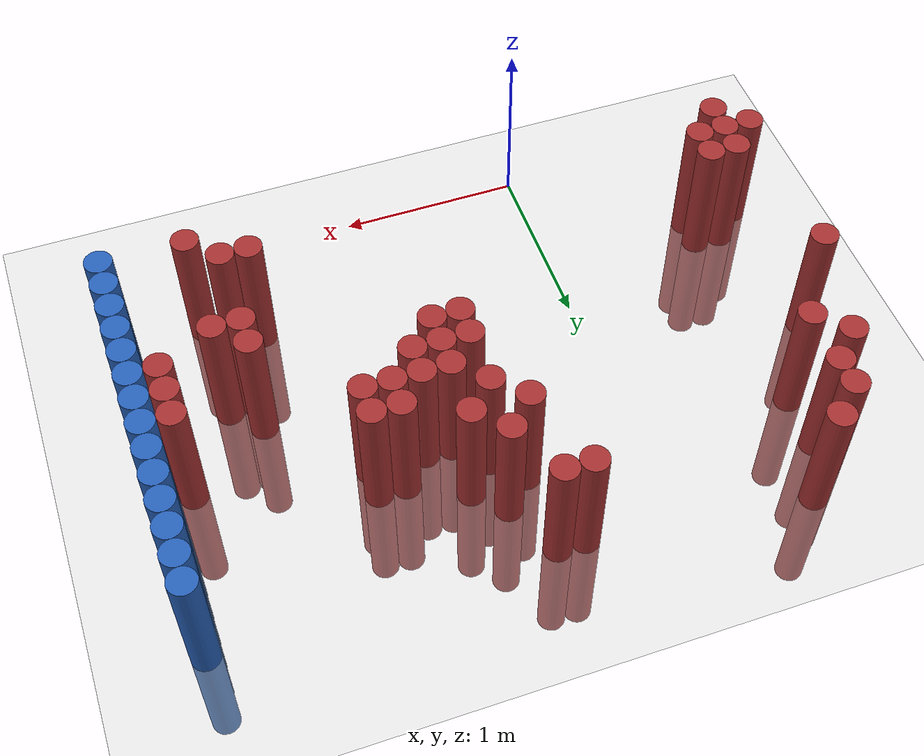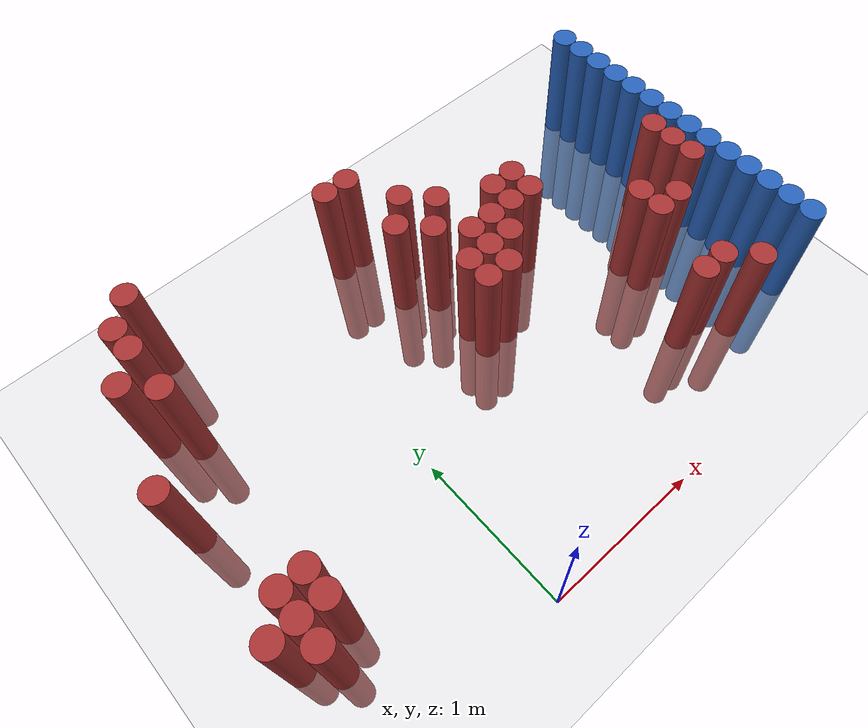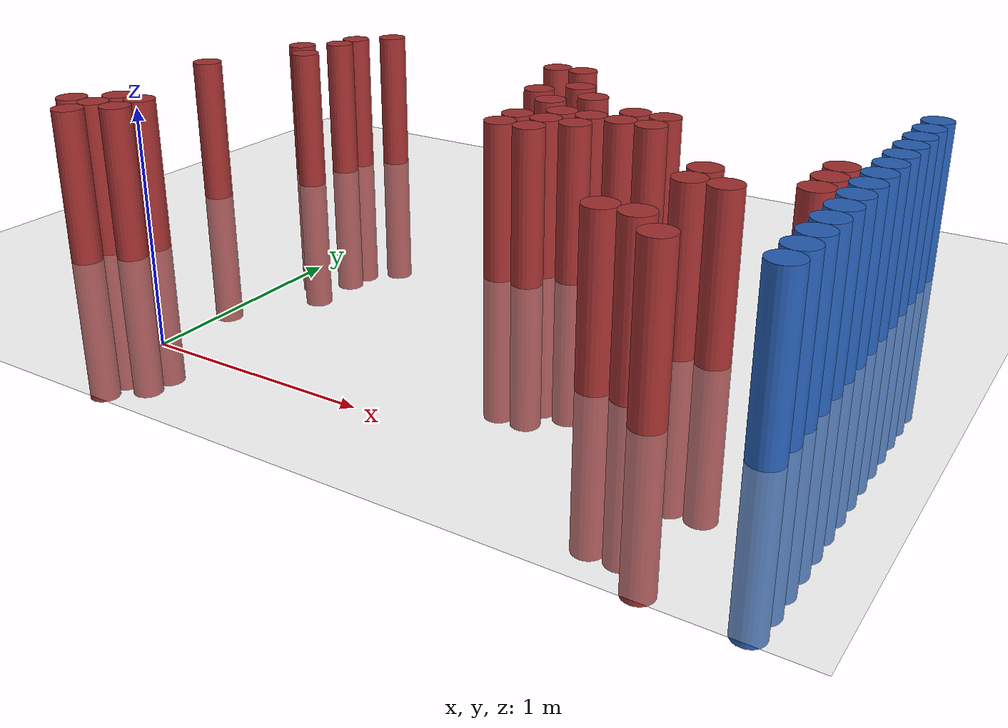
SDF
<sdf version="1.6">
 <world name="default">
  <model name="ground_plane">
   <static>1</static>
   <link name="link">
    <collision name="collision">
     <geometry><plane><normal>0 0 1</normal><size>100 100</size></plane></geometry>
     <surface><friction><ode><mu>100</mu><mu2>50</mu2></ode></friction></surface>
    </collision>
    <visual name="visual">
     <cast_shadows>0</cast_shadows>
     <geometry><plane><normal>0 0 1</normal><size>100 100</size></plane></geometry>
     <material>
      <script><uri>file://media/materials/scripts/gazebo.material</uri><name>Gazebo/Grey</name></script>
     </material>
    </visual>
   </link>
  </model>
  <model name="unit_cylinder_152">
   <static>1</static>
   <pose>-1.175000 0.625000 0.000000 0.000000 0.000000 0.000000</pose>
   <link name="link">
    <inertial>
     <mass>1</mass>
     <inertia><ixx>0.145833</ixx><ixy>0</ixy><ixz>0</ixz><iyy>0.145833</iyy><iyz>0</iyz><izz>0.125</izz></inertia>
    </inertial>
    <collision name="collision">
     <geometry><cylinder><radius>0.075000</radius><length>1.5</length></cylinder></geometry>
    </collision>
    <visual name="visual">
     <geometry><cylinder><radius>0.075000</radius><length>1.5</length></cylinder></geometry>
     <material>
      <ambient>0.648000 0.192000 0.192000 1</ambient>
      <diffuse>0.648000 0.192000 0.192000 1</diffuse>
     </material>
     <material>
      <script><name>Gazebo/Grey</name><uri>file://media/materials/scripts/gazebo.material</uri></script>
     </material>
    </visual>
   </link>
  </model>
  <model name="unit_cylinder_153">
   <static>1</static>
   <pose>-1.175000 1.525000 0.000000 0.000000 0.000000 0.000000</pose>
   <link name="link">
    <inertial>
     <mass>1</mass>
     <inertia><ixx>0.145833</ixx><ixy>0</ixy><ixz>0</ixz><iyy>0.145833</iyy><iyz>0</iyz><izz>0.125</izz></inertia>
    </inertial>
    <collision name="collision">
     <geometry><cylinder><radius>0.075000</radius><length>1.5</length></cylinder></geometry>
    </collision>
    <visual name="visual">
     <geometry><cylinder><radius>0.075000</radius><length>1.5</length></cylinder></geometry>
     <material>
      <ambient>0.648000 0.192000 0.192000 1</ambient>
      <diffuse>0.648000 0.192000 0.192000 1</diffuse>
     </material>
     <material>
      <script><name>Gazebo/Grey</name><uri>file://media/materials/scripts/gazebo.material</uri></script>
     </material>
    </visual>
   </link>
  </model>
  <model name="unit_cylinder_154">
   <static>1</static>
   <pose>-1.025000 0.475000 0.000000 0.000000 0.000000 0.000000</pose>
   <link name="link">
    <inertial>
     <mass>1</mass>
     <inertia><ixx>0.145833</ixx><ixy>0</ixy><ixz>0</ixz><iyy>0.145833</iyy><iyz>0</iyz><izz>0.125</izz></inertia>
    </inertial>
    <collision name="collision">
     <geometry><cylinder><radius>0.075000</radius><length>1.5</length></cylinder></geometry>
    </collision>
    <visual name="visual">
     <geometry><cylinder><radius>0.075000</radius><length>1.5</length></cylinder></geometry>
     <material>
      <ambient>0.648000 0.192000 0.192000 1</ambient>
      <diffuse>0.648000 0.192000 0.192000 1</diffuse>
     </material>
     <material>
      <script><name>Gazebo/Grey</name><uri>file://media/materials/scripts/gazebo.material</uri></script>
     </material>
    </visual>
   </link>
  </model>
  <model name="unit_cylinder_155">
   <static>1</static>
   <pose>-1.025000 0.625000 0.000000 0.000000 0.000000 0.000000</pose>
   <link name="link">
    <inertial>
     <mass>1</mass>
     <inertia><ixx>0.145833</ixx><ixy>0</ixy><ixz>0</ixz><iyy>0.145833</iyy><iyz>0</iyz><izz>0.125</izz></inertia>
    </inertial>
    <collision name="collision">
     <geometry><cylinder><radius>0.075000</radius><length>1.5</length></cylinder></geometry>
    </collision>
    <visual name="visual">
     <geometry><cylinder><radius>0.075000</radius><length>1.5</length></cylinder></geometry>
     <material>
      <ambient>0.648000 0.192000 0.192000 1</ambient>
      <diffuse>0.648000 0.192000 0.192000 1</diffuse>
     </material>
     <material>
      <script><name>Gazebo/Grey</name><uri>file://media/materials/scripts/gazebo.material</uri></script>
     </material>
    </visual>
   </link>
  </model>
  <model name="unit_cylinder_156">
   <static>1</static>
   <pose>-1.025000 0.775000 0.000000 0.000000 0.000000 0.000000</pose>
   <link name="link">
    <inertial>
     <mass>1</mass>
     <inertia><ixx>0.145833</ixx><ixy>0</ixy><ixz>0</ixz><iyy>0.145833</iyy><iyz>0</iyz><izz>0.125</izz></inertia>
    </inertial>
    <collision name="collision">
     <geometry><cylinder><radius>0.075000</radius><length>1.5</length></cylinder></geometry>
    </collision>
    <visual name="visual">
     <geometry><cylinder><radius>0.075000</radius><length>1.5</length></cylinder></geometry>
     <material>
      <ambient>0.648000 0.192000 0.192000 1</ambient>
      <diffuse>0.648000 0.192000 0.192000 1</diffuse>
     </material>
     <material>
      <script><name>Gazebo/Grey</name><uri>file://media/materials/scripts/gazebo.material</uri></script>
     </material>
    </visual>
   </link>
  </model>
  <model name="unit_cylinder_157">
   <static>1</static>
   <pose>-1.025000 2.125000 0.000000 0.000000 0.000000 0.000000</pose>
   <link name="link">
    <inertial>
     <mass>1</mass>
     <inertia><ixx>0.145833</ixx><ixy>0</ixy><ixz>0</ixz><iyy>0.145833</iyy><iyz>0</iyz><izz>0.125</izz></inertia>
    </inertial>
    <collision name="collision">
     <geometry><cylinder><radius>0.075000</radius><length>1.5</length></cylinder></geometry>
    </collision>
    <visual name="visual">
     <geometry><cylinder><radius>0.075000</radius><length>1.5</length></cylinder></geometry>
     <material>
      <ambient>0.648000 0.192000 0.192000 1</ambient>
      <diffuse>0.648000 0.192000 0.192000 1</diffuse>
     </material>
     <material>
      <script><name>Gazebo/Grey</name><uri>file://media/materials/scripts/gazebo.material</uri></script>
     </material>
    </visual>
   </link>
  </model>
  <model name="unit_cylinder_159">
   <static>1</static>
   <pose>-0.875000 0.625000 0.000000 0.000000 0.000000 0.000000</pose>
   <link name="link">
    <inertial>
     <mass>1</mass>
     <inertia><ixx>0.145833</ixx><ixy>0</ixy><ixz>0</ixz><iyy>0.145833</iyy><iyz>0</iyz><izz>0.125</izz></inertia>
    </inertial>
    <collision name="collision">
     <geometry><cylinder><radius>0.075000</radius><length>1.5</length></cylinder></geometry>
    </collision>
    <visual name="visual">
     <geometry><cylinder><radius>0.075000</radius><length>1.5</length></cylinder></geometry>
     <material>
      <ambient>0.648000 0.192000 0.192000 1</ambient>
      <diffuse>0.648000 0.192000 0.192000 1</diffuse>
     </material>
     <material>
      <script><name>Gazebo/Grey</name><uri>file://media/materials/scripts/gazebo.material</uri></script>
     </material>
    </visual>
   </link>
  </model>
  <model name="unit_cylinder_160">
   <static>1</static>
   <pose>-0.875000 0.775000 0.000000 0.000000 0.000000 0.000000</pose>
   <link name="link">
    <inertial>
     <mass>1</mass>
     <inertia><ixx>0.145833</ixx><ixy>0</ixy><ixz>0</ixz><iyy>0.145833</iyy><iyz>0</iyz><izz>0.125</izz></inertia>
    </inertial>
    <collision name="collision">
     <geometry><cylinder><radius>0.075000</radius><length>1.5</length></cylinder></geometry>
    </collision>
    <visual name="visual">
     <geometry><cylinder><radius>0.075000</radius><length>1.5</length></cylinder></geometry>
     <material>
      <ambient>0.648000 0.192000 0.192000 1</ambient>
      <diffuse>0.648000 0.192000 0.192000 1</diffuse>
     </material>
     <material>
      <script><name>Gazebo/Grey</name><uri>file://media/materials/scripts/gazebo.material</uri></script>
     </material>
    </visual>
   </link>
  </model>
  <model name="unit_cylinder_161">
   <static>1</static>
   <pose>-0.875000 1.975000 0.000000 0.000000 0.000000 0.000000</pose>
   <link name="link">
    <inertial>
     <mass>1</mass>
     <inertia><ixx>0.145833</ixx><ixy>0</ixy><ixz>0</ixz><iyy>0.145833</iyy><iyz>0</iyz><izz>0.125</izz></inertia>
    </inertial>
    <collision name="collision">
     <geometry><cylinder><radius>0.075000</radius><length>1.5</length></cylinder></geometry>
    </collision>
    <visual name="visual">
     <geometry><cylinder><radius>0.075000</radius><length>1.5</length></cylinder></geometry>
     <material>
      <ambient>0.648000 0.192000 0.192000 1</ambient>
      <diffuse>0.648000 0.192000 0.192000 1</diffuse>
     </material>
     <material>
      <script><name>Gazebo/Grey</name><uri>file://media/materials/scripts/gazebo.material</uri></script>
     </material>
    </visual>
   </link>
  </model>
  <model name="unit_cylinder_162">
   <static>1</static>
   <pose>-0.875000 2.275000 0.000000 0.000000 0.000000 0.000000</pose>
   <link name="link">
    <inertial>
     <mass>1</mass>
     <inertia><ixx>0.145833</ixx><ixy>0</ixy><ixz>0</ixz><iyy>0.145833</iyy><iyz>0</iyz><izz>0.125</izz></inertia>
    </inertial>
    <collision name="collision">
     <geometry><cylinder><radius>0.075000</radius><length>1.5</length></cylinder></geometry>
    </collision>
    <visual name="visual">
     <geometry><cylinder><radius>0.075000</radius><length>1.5</length></cylinder></geometry>
     <material>
      <ambient>0.648000 0.192000 0.192000 1</ambient>
      <diffuse>0.648000 0.192000 0.192000 1</diffuse>
     </material>
     <material>
      <script><name>Gazebo/Grey</name><uri>file://media/materials/scripts/gazebo.material</uri></script>
     </material>
    </visual>
   </link>
  </model>
  <model name="unit_cylinder_163">
   <static>1</static>
   <pose>-0.875000 2.425000 0.000000 0.000000 0.000000 0.000000</pose>
   <link name="link">
    <inertial>
     <mass>1</mass>
     <inertia><ixx>0.145833</ixx><ixy>0</ixy><ixz>0</ixz><iyy>0.145833</iyy><iyz>0</iyz><izz>0.125</izz></inertia>
    </inertial>
    <collision name="collision">
     <geometry><cylinder><radius>0.075000</radius><length>1.5</length></cylinder></geometry>
    </collision>
    <visual name="visual">
     <geometry><cylinder><radius>0.075000</radius><length>1.5</length></cylinder></geometry>
     <material>
      <ambient>0.648000 0.192000 0.192000 1</ambient>
      <diffuse>0.648000 0.192000 0.192000 1</diffuse>
     </material>
     <material>
      <script><name>Gazebo/Grey</name><uri>file://media/materials/scripts/gazebo.material</uri></script>
     </material>
    </visual>
   </link>
  </model>
  <model name="unit_cylinder_166">
   <static>1</static>
   <pose>-0.725000 2.575000 0.000000 0.000000 0.000000 0.000000</pose>
   <link name="link">
    <inertial>
     <mass>1</mass>
     <inertia><ixx>0.145833</ixx><ixy>0</ixy><ixz>0</ixz><iyy>0.145833</iyy><iyz>0</iyz><izz>0.125</izz></inertia>
    </inertial>
    <collision name="collision">
     <geometry><cylinder><radius>0.075000</radius><length>1.5</length></cylinder></geometry>
    </collision>
    <visual name="visual">
     <geometry><cylinder><radius>0.075000</radius><length>1.5</length></cylinder></geometry>
     <material>
      <ambient>0.648000 0.192000 0.192000 1</ambient>
      <diffuse>0.648000 0.192000 0.192000 1</diffuse>
     </material>
     <material>
      <script><name>Gazebo/Grey</name><uri>file://media/materials/scripts/gazebo.material</uri></script>
     </material>
    </visual>
   </link>
  </model>
  <model name="unit_cylinder_169">
   <static>1</static>
   <pose>0.475000 2.425000 0.000000 0.000000 0.000000 0.000000</pose>
   <link name="link">
    <inertial>
     <mass>1</mass>
     <inertia><ixx>0.145833</ixx><ixy>0</ixy><ixz>0</ixz><iyy>0.145833</iyy><iyz>0</iyz><izz>0.125</izz></inertia>
    </inertial>
    <collision name="collision">
     <geometry><cylinder><radius>0.075000</radius><length>1.5</length></cylinder></geometry>
    </collision>
    <visual name="visual">
     <geometry><cylinder><radius>0.075000</radius><length>1.5</length></cylinder></geometry>
     <material>
      <ambient>0.648000 0.192000 0.192000 1</ambient>
      <diffuse>0.648000 0.192000 0.192000 1</diffuse>
     </material>
     <material>
      <script><name>Gazebo/Grey</name><uri>file://media/materials/scripts/gazebo.material</uri></script>
     </material>
    </visual>
   </link>
  </model>
  <model name="unit_cylinder_171">
   <static>1</static>
   <pose>0.625000 1.975000 0.000000 0.000000 0.000000 0.000000</pose>
   <link name="link">
    <inertial>
     <mass>1</mass>
     <inertia><ixx>0.145833</ixx><ixy>0</ixy><ixz>0</ixz><iyy>0.145833</iyy><iyz>0</iyz><izz>0.125</izz></inertia>
    </inertial>
    <collision name="collision">
     <geometry><cylinder><radius>0.075000</radius><length>1.5</length></cylinder></geometry>
    </collision>
    <visual name="visual">
     <geometry><cylinder><radius>0.075000</radius><length>1.5</length></cylinder></geometry>
     <material>
      <ambient>0.648000 0.192000 0.192000 1</ambient>
      <diffuse>0.648000 0.192000 0.192000 1</diffuse>
     </material>
     <material>
      <script><name>Gazebo/Grey</name><uri>file://media/materials/scripts/gazebo.material</uri></script>
     </material>
    </visual>
   </link>
  </model>
  <model name="unit_cylinder_172">
   <static>1</static>
   <pose>0.625000 2.425000 0.000000 0.000000 0.000000 0.000000</pose>
   <link name="link">
    <inertial>
     <mass>1</mass>
     <inertia><ixx>0.145833</ixx><ixy>0</ixy><ixz>0</ixz><iyy>0.145833</iyy><iyz>0</iyz><izz>0.125</izz></inertia>
    </inertial>
    <collision name="collision">
     <geometry><cylinder><radius>0.075000</radius><length>1.5</length></cylinder></geometry>
    </collision>
    <visual name="visual">
     <geometry><cylinder><radius>0.075000</radius><length>1.5</length></cylinder></geometry>
     <material>
      <ambient>0.648000 0.192000 0.192000 1</ambient>
      <diffuse>0.648000 0.192000 0.192000 1</diffuse>
     </material>
     <material>
      <script><name>Gazebo/Grey</name><uri>file://media/materials/scripts/gazebo.material</uri></script>
     </material>
    </visual>
   </link>
  </model>
  <model name="unit_cylinder_173">
   <static>1</static>
   <pose>0.775000 1.375000 0.000000 0.000000 0.000000 0.000000</pose>
   <link name="link">
    <inertial>
     <mass>1</mass>
     <inertia><ixx>0.145833</ixx><ixy>0</ixy><ixz>0</ixz><iyy>0.145833</iyy><iyz>0</iyz><izz>0.125</izz></inertia>
    </inertial>
    <collision name="collision">
     <geometry><cylinder><radius>0.075000</radius><length>1.5</length></cylinder></geometry>
    </collision>
    <visual name="visual">
     <geometry><cylinder><radius>0.075000</radius><length>1.5</length></cylinder></geometry>
     <material>
      <ambient>0.648000 0.192000 0.192000 1</ambient>
      <diffuse>0.648000 0.192000 0.192000 1</diffuse>
     </material>
     <material>
      <script><name>Gazebo/Grey</name><uri>file://media/materials/scripts/gazebo.material</uri></script>
     </material>
    </visual>
   </link>
  </model>
  <model name="unit_cylinder_174">
   <static>1</static>
   <pose>0.775000 1.525000 0.000000 0.000000 0.000000 0.000000</pose>
   <link name="link">
    <inertial>
     <mass>1</mass>
     <inertia><ixx>0.145833</ixx><ixy>0</ixy><ixz>0</ixz><iyy>0.145833</iyy><iyz>0</iyz><izz>0.125</izz></inertia>
    </inertial>
    <collision name="collision">
     <geometry><cylinder><radius>0.075000</radius><length>1.5</length></cylinder></geometry>
    </collision>
    <visual name="visual">
     <geometry><cylinder><radius>0.075000</radius><length>1.5</length></cylinder></geometry>
     <material>
      <ambient>0.648000 0.192000 0.192000 1</ambient>
      <diffuse>0.648000 0.192000 0.192000 1</diffuse>
     </material>
     <material>
      <script><name>Gazebo/Grey</name><uri>file://media/materials/scripts/gazebo.material</uri></script>
     </material>
    </visual>
   </link>
  </model>
  <model name="unit_cylinder_175">
   <static>1</static>
   <pose>0.775000 1.825000 0.000000 0.000000 0.000000 0.000000</pose>
   <link name="link">
    <inertial>
     <mass>1</mass>
     <inertia><ixx>0.145833</ixx><ixy>0</ixy><ixz>0</ixz><iyy>0.145833</iyy><iyz>0</iyz><izz>0.125</izz></inertia>
    </inertial>
    <collision name="collision">
     <geometry><cylinder><radius>0.075000</radius><length>1.5</length></cylinder></geometry>
    </collision>
    <visual name="visual">
     <geometry><cylinder><radius>0.075000</radius><length>1.5</length></cylinder></geometry>
     <material>
      <ambient>0.648000 0.192000 0.192000 1</ambient>
      <diffuse>0.648000 0.192000 0.192000 1</diffuse>
     </material>
     <material>
      <script><name>Gazebo/Grey</name><uri>file://media/materials/scripts/gazebo.material</uri></script>
     </material>
    </visual>
   </link>
  </model>
  <model name="unit_cylinder_176">
   <static>1</static>
   <pose>0.775000 2.125000 0.000000 0.000000 0.000000 0.000000</pose>
   <link name="link">
    <inertial>
     <mass>1</mass>
     <inertia><ixx>0.145833</ixx><ixy>0</ixy><ixz>0</ixz><iyy>0.145833</iyy><iyz>0</iyz><izz>0.125</izz></inertia>
    </inertial>
    <collision name="collision">
     <geometry><cylinder><radius>0.075000</radius><length>1.5</length></cylinder></geometry>
    </collision>
    <visual name="visual">
     <geometry><cylinder><radius>0.075000</radius><length>1.5</length></cylinder></geometry>
     <material>
      <ambient>0.648000 0.192000 0.192000 1</ambient>
      <diffuse>0.648000 0.192000 0.192000 1</diffuse>
     </material>
     <material>
      <script><name>Gazebo/Grey</name><uri>file://media/materials/scripts/gazebo.material</uri></script>
     </material>
    </visual>
   </link>
  </model>
  <model name="unit_cylinder_177">
   <static>1</static>
   <pose>0.925000 1.375000 0.000000 0.000000 0.000000 0.000000</pose>
   <link name="link">
    <inertial>
     <mass>1</mass>
     <inertia><ixx>0.145833</ixx><ixy>0</ixy><ixz>0</ixz><iyy>0.145833</iyy><iyz>0</iyz><izz>0.125</izz></inertia>
    </inertial>
    <collision name="collision">
     <geometry><cylinder><radius>0.075000</radius><length>1.5</length></cylinder></geometry>
    </collision>
    <visual name="visual">
     <geometry><cylinder><radius>0.075000</radius><length>1.5</length></cylinder></geometry>
     <material>
      <ambient>0.648000 0.192000 0.192000 1</ambient>
      <diffuse>0.648000 0.192000 0.192000 1</diffuse>
     </material>
     <material>
      <script><name>Gazebo/Grey</name><uri>file://media/materials/scripts/gazebo.material</uri></script>
     </material>
    </visual>
   </link>
  </model>
  <model name="unit_cylinder_178">
   <static>1</static>
   <pose>0.925000 1.525000 0.000000 0.000000 0.000000 0.000000</pose>
   <link name="link">
    <inertial>
     <mass>1</mass>
     <inertia><ixx>0.145833</ixx><ixy>0</ixy><ixz>0</ixz><iyy>0.145833</iyy><iyz>0</iyz><izz>0.125</izz></inertia>
    </inertial>
    <collision name="collision">
     <geometry><cylinder><radius>0.075000</radius><length>1.5</length></cylinder></geometry>
    </collision>
    <visual name="visual">
     <geometry><cylinder><radius>0.075000</radius><length>1.5</length></cylinder></geometry>
     <material>
      <ambient>0.648000 0.192000 0.192000 1</ambient>
      <diffuse>0.648000 0.192000 0.192000 1</diffuse>
     </material>
     <material>
      <script><name>Gazebo/Grey</name><uri>file://media/materials/scripts/gazebo.material</uri></script>
     </material>
    </visual>
   </link>
  </model>
  <model name="unit_cylinder_179">
   <static>1</static>
   <pose>0.925000 1.675000 0.000000 0.000000 0.000000 0.000000</pose>
   <link name="link">
    <inertial>
     <mass>1</mass>
     <inertia><ixx>0.145833</ixx><ixy>0</ixy><ixz>0</ixz><iyy>0.145833</iyy><iyz>0</iyz><izz>0.125</izz></inertia>
    </inertial>
    <collision name="collision">
     <geometry><cylinder><radius>0.075000</radius><length>1.5</length></cylinder></geometry>
    </collision>
    <visual name="visual">
     <geometry><cylinder><radius>0.075000</radius><length>1.5</length></cylinder></geometry>
     <material>
      <ambient>0.648000 0.192000 0.192000 1</ambient>
      <diffuse>0.648000 0.192000 0.192000 1</diffuse>
     </material>
     <material>
      <script><name>Gazebo/Grey</name><uri>file://media/materials/scripts/gazebo.material</uri></script>
     </material>
    </visual>
   </link>
  </model>
  <model name="unit_cylinder_180">
   <static>1</static>
   <pose>0.925000 1.975000 0.000000 0.000000 0.000000 0.000000</pose>
   <link name="link">
    <inertial>
     <mass>1</mass>
     <inertia><ixx>0.145833</ixx><ixy>0</ixy><ixz>0</ixz><iyy>0.145833</iyy><iyz>0</iyz><izz>0.125</izz></inertia>
    </inertial>
    <collision name="collision">
     <geometry><cylinder><radius>0.075000</radius><length>1.5</length></cylinder></geometry>
    </collision>
    <visual name="visual">
     <geometry><cylinder><radius>0.075000</radius><length>1.5</length></cylinder></geometry>
     <material>
      <ambient>0.648000 0.192000 0.192000 1</ambient>
      <diffuse>0.648000 0.192000 0.192000 1</diffuse>
     </material>
     <material>
      <script><name>Gazebo/Grey</name><uri>file://media/materials/scripts/gazebo.material</uri></script>
     </material>
    </visual>
   </link>
  </model>
  <model name="unit_cylinder_181">
   <static>1</static>
   <pose>1.075000 1.525000 0.000000 0.000000 0.000000 0.000000</pose>
   <link name="link">
    <inertial>
     <mass>1</mass>
     <inertia><ixx>0.145833</ixx><ixy>0</ixy><ixz>0</ixz><iyy>0.145833</iyy><iyz>0</iyz><izz>0.125</izz></inertia>
    </inertial>
    <collision name="collision">
     <geometry><cylinder><radius>0.075000</radius><length>1.5</length></cylinder></geometry>
    </collision>
    <visual name="visual">
     <geometry><cylinder><radius>0.075000</radius><length>1.5</length></cylinder></geometry>
     <material>
      <ambient>0.648000 0.192000 0.192000 1</ambient>
      <diffuse>0.648000 0.192000 0.192000 1</diffuse>
     </material>
     <material>
      <script><name>Gazebo/Grey</name><uri>file://media/materials/scripts/gazebo.material</uri></script>
     </material>
    </visual>
   </link>
  </model>
  <model name="unit_cylinder_182">
   <static>1</static>
   <pose>1.075000 1.675000 0.000000 0.000000 0.000000 0.000000</pose>
   <link name="link">
    <inertial>
     <mass>1</mass>
     <inertia><ixx>0.145833</ixx><ixy>0</ixy><ixz>0</ixz><iyy>0.145833</iyy><iyz>0</iyz><izz>0.125</izz></inertia>
    </inertial>
    <collision name="collision">
     <geometry><cylinder><radius>0.075000</radius><length>1.5</length></cylinder></geometry>
    </collision>
    <visual name="visual">
     <geometry><cylinder><radius>0.075000</radius><length>1.5</length></cylinder></geometry>
     <material>
      <ambient>0.648000 0.192000 0.192000 1</ambient>
      <diffuse>0.648000 0.192000 0.192000 1</diffuse>
     </material>
     <material>
      <script><name>Gazebo/Grey</name><uri>file://media/materials/scripts/gazebo.material</uri></script>
     </material>
    </visual>
   </link>
  </model>
  <model name="unit_cylinder_185">
   <static>1</static>
   <pose>1.225000 1.675000 0.000000 0.000000 0.000000 0.000000</pose>
   <link name="link">
    <inertial>
     <mass>1</mass>
     <inertia><ixx>0.145833</ixx><ixy>0</ixy><ixz>0</ixz><iyy>0.145833</iyy><iyz>0</iyz><izz>0.125</izz></inertia>
    </inertial>
    <collision name="collision">
     <geometry><cylinder><radius>0.075000</radius><length>1.5</length></cylinder></geometry>
    </collision>
    <visual name="visual">
     <geometry><cylinder><radius>0.075000</radius><length>1.5</length></cylinder></geometry>
     <material>
      <ambient>0.648000 0.192000 0.192000 1</ambient>
      <diffuse>0.648000 0.192000 0.192000 1</diffuse>
     </material>
     <material>
      <script><name>Gazebo/Grey</name><uri>file://media/materials/scripts/gazebo.material</uri></script>
     </material>
    </visual>
   </link>
  </model>
  <model name="unit_cylinder_186">
   <static>1</static>
   <pose>1.225000 1.825000 0.000000 0.000000 0.000000 0.000000</pose>
   <link name="link">
    <inertial>
     <mass>1</mass>
     <inertia><ixx>0.145833</ixx><ixy>0</ixy><ixz>0</ixz><iyy>0.145833</iyy><iyz>0</iyz><izz>0.125</izz></inertia>
    </inertial>
    <collision name="collision">
     <geometry><cylinder><radius>0.075000</radius><length>1.5</length></cylinder></geometry>
    </collision>
    <visual name="visual">
     <geometry><cylinder><radius>0.075000</radius><length>1.5</length></cylinder></geometry>
     <material>
      <ambient>0.648000 0.192000 0.192000 1</ambient>
      <diffuse>0.648000 0.192000 0.192000 1</diffuse>
     </material>
     <material>
      <script><name>Gazebo/Grey</name><uri>file://media/materials/scripts/gazebo.material</uri></script>
     </material>
    </visual>
   </link>
  </model>
  <model name="unit_cylinder_189">
   <static>1</static>
   <pose>1.375000 1.675000 0.000000 0.000000 0.000000 0.000000</pose>
   <link name="link">
    <inertial>
     <mass>1</mass>
     <inertia><ixx>0.145833</ixx><ixy>0</ixy><ixz>0</ixz><iyy>0.145833</iyy><iyz>0</iyz><izz>0.125</izz></inertia>
    </inertial>
    <collision name="collision">
     <geometry><cylinder><radius>0.075000</radius><length>1.5</length></cylinder></geometry>
    </collision>
    <visual name="visual">
     <geometry><cylinder><radius>0.075000</radius><length>1.5</length></cylinder></geometry>
     <material>
      <ambient>0.648000 0.192000 0.192000 1</ambient>
      <diffuse>0.648000 0.192000 0.192000 1</diffuse>
     </material>
     <material>
      <script><name>Gazebo/Grey</name><uri>file://media/materials/scripts/gazebo.material</uri></script>
     </material>
    </visual>
   </link>
  </model>
  <model name="unit_cylinder_190">
   <static>1</static>
   <pose>1.375000 1.825000 0.000000 0.000000 0.000000 0.000000</pose>
   <link name="link">
    <inertial>
     <mass>1</mass>
     <inertia><ixx>0.145833</ixx><ixy>0</ixy><ixz>0</ixz><iyy>0.145833</iyy><iyz>0</iyz><izz>0.125</izz></inertia>
    </inertial>
    <collision name="collision">
     <geometry><cylinder><radius>0.075000</radius><length>1.5</length></cylinder></geometry>
    </collision>
    <visual name="visual">
     <geometry><cylinder><radius>0.075000</radius><length>1.5</length></cylinder></geometry>
     <material>
      <ambient>0.648000 0.192000 0.192000 1</ambient>
      <diffuse>0.648000 0.192000 0.192000 1</diffuse>
     </material>
     <material>
      <script><name>Gazebo/Grey</name><uri>file://media/materials/scripts/gazebo.material</uri></script>
     </material>
    </visual>
   </link>
  </model>
  <model name="unit_cylinder_196">
   <static>1</static>
   <pose>1.675000 0.625000 0.000000 0.000000 0.000000 0.000000</pose>
   <link name="link">
    <inertial>
     <mass>1</mass>
     <inertia><ixx>0.145833</ixx><ixy>0</ixy><ixz>0</ixz><iyy>0.145833</iyy><iyz>0</iyz><izz>0.125</izz></inertia>
    </inertial>
    <collision name="collision">
     <geometry><cylinder><radius>0.075000</radius><length>1.5</length></cylinder></geometry>
    </collision>
    <visual name="visual">
     <geometry><cylinder><radius>0.075000</radius><length>1.5</length></cylinder></geometry>
     <material>
      <ambient>0.648000 0.192000 0.192000 1</ambient>
      <diffuse>0.648000 0.192000 0.192000 1</diffuse>
     </material>
     <material>
      <script><name>Gazebo/Grey</name><uri>file://media/materials/scripts/gazebo.material</uri></script>
     </material>
    </visual>
   </link>
  </model>
  <model name="unit_cylinder_199">
   <static>1</static>
   <pose>1.825000 0.625000 0.000000 0.000000 0.000000 0.000000</pose>
   <link name="link">
    <inertial>
     <mass>1</mass>
     <inertia><ixx>0.145833</ixx><ixy>0</ixy><ixz>0</ixz><iyy>0.145833</iyy><iyz>0</iyz><izz>0.125</izz></inertia>
    </inertial>
    <collision name="collision">
     <geometry><cylinder><radius>0.075000</radius><length>1.5</length></cylinder></geometry>
    </collision>
    <visual name="visual">
     <geometry><cylinder><radius>0.075000</radius><length>1.5</length></cylinder></geometry>
     <material>
      <ambient>0.648000 0.192000 0.192000 1</ambient>
      <diffuse>0.648000 0.192000 0.192000 1</diffuse>
     </material>
     <material>
      <script><name>Gazebo/Grey</name><uri>file://media/materials/scripts/gazebo.material</uri></script>
     </material>
    </visual>
   </link>
  </model>
  <model name="unit_cylinder_200">
   <static>1</static>
   <pose>1.825000 1.075000 0.000000 0.000000 0.000000 0.000000</pose>
   <link name="link">
    <inertial>
     <mass>1</mass>
     <inertia><ixx>0.145833</ixx><ixy>0</ixy><ixz>0</ixz><iyy>0.145833</iyy><iyz>0</iyz><izz>0.125</izz></inertia>
    </inertial>
    <collision name="collision">
     <geometry><cylinder><radius>0.075000</radius><length>1.5</length></cylinder></geometry>
    </collision>
    <visual name="visual">
     <geometry><cylinder><radius>0.075000</radius><length>1.5</length></cylinder></geometry>
     <material>
      <ambient>0.648000 0.192000 0.192000 1</ambient>
      <diffuse>0.648000 0.192000 0.192000 1</diffuse>
     </material>
     <material>
      <script><name>Gazebo/Grey</name><uri>file://media/materials/scripts/gazebo.material</uri></script>
     </material>
    </visual>
   </link>
  </model>
  <model name="unit_cylinder_201">
   <static>1</static>
   <pose>1.825000 1.225000 0.000000 0.000000 0.000000 0.000000</pose>
   <link name="link">
    <inertial>
     <mass>1</mass>
     <inertia><ixx>0.145833</ixx><ixy>0</ixy><ixz>0</ixz><iyy>0.145833</iyy><iyz>0</iyz><izz>0.125</izz></inertia>
    </inertial>
    <collision name="collision">
     <geometry><cylinder><radius>0.075000</radius><length>1.5</length></cylinder></geometry>
    </collision>
    <visual name="visual">
     <geometry><cylinder><radius>0.075000</radius><length>1.5</length></cylinder></geometry>
     <material>
      <ambient>0.648000 0.192000 0.192000 1</ambient>
      <diffuse>0.648000 0.192000 0.192000 1</diffuse>
     </material>
     <material>
      <script><name>Gazebo/Grey</name><uri>file://media/materials/scripts/gazebo.material</uri></script>
     </material>
    </visual>
   </link>
  </model>
  <model name="unit_cylinder_206">
   <static>1</static>
   <pose>1.975000 0.475000 0.000000 0.000000 0.000000 0.000000</pose>
   <link name="link">
    <inertial>
     <mass>1</mass>
     <inertia><ixx>0.145833</ixx><ixy>0</ixy><ixz>0</ixz><iyy>0.145833</iyy><iyz>0</iyz><izz>0.125</izz></inertia>
    </inertial>
    <collision name="collision">
     <geometry><cylinder><radius>0.075000</radius><length>1.5</length></cylinder></geometry>
    </collision>
    <visual name="visual">
     <geometry><cylinder><radius>0.075000</radius><length>1.5</length></cylinder></geometry>
     <material>
      <ambient>0.648000 0.192000 0.192000 1</ambient>
      <diffuse>0.648000 0.192000 0.192000 1</diffuse>
     </material>
     <material>
      <script><name>Gazebo/Grey</name><uri>file://media/materials/scripts/gazebo.material</uri></script>
     </material>
    </visual>
   </link>
  </model>
  <model name="unit_cylinder_207">
   <static>1</static>
   <pose>1.975000 1.075000 0.000000 0.000000 0.000000 0.000000</pose>
   <link name="link">
    <inertial>
     <mass>1</mass>
     <inertia><ixx>0.145833</ixx><ixy>0</ixy><ixz>0</ixz><iyy>0.145833</iyy><iyz>0</iyz><izz>0.125</izz></inertia>
    </inertial>
    <collision name="collision">
     <geometry><cylinder><radius>0.075000</radius><length>1.5</length></cylinder></geometry>
    </collision>
    <visual name="visual">
     <geometry><cylinder><radius>0.075000</radius><length>1.5</length></cylinder></geometry>
     <material>
      <ambient>0.648000 0.192000 0.192000 1</ambient>
      <diffuse>0.648000 0.192000 0.192000 1</diffuse>
     </material>
     <material>
      <script><name>Gazebo/Grey</name><uri>file://media/materials/scripts/gazebo.material</uri></script>
     </material>
    </visual>
   </link>
  </model>
  <model name="unit_cylinder_219">
   <static>1</static>
   <pose>2.275000 1.225000 0.000000 0.000000 0.000000 0.000000</pose>
   <link name="link">
    <inertial>
     <mass>1</mass>
     <inertia><ixx>0.145833</ixx><ixy>0</ixy><ixz>0</ixz><iyy>0.145833</iyy><iyz>0</iyz><izz>0.125</izz></inertia>
    </inertial>
    <collision name="collision">
     <geometry><cylinder><radius>0.075000</radius><length>1.5</length></cylinder></geometry>
    </collision>
    <visual name="visual">
     <geometry><cylinder><radius>0.075000</radius><length>1.5</length></cylinder></geometry>
     <material>
      <ambient>0.648000 0.192000 0.192000 1</ambient>
      <diffuse>0.648000 0.192000 0.192000 1</diffuse>
     </material>
     <material>
      <script><name>Gazebo/Grey</name><uri>file://media/materials/scripts/gazebo.material</uri></script>
     </material>
    </visual>
   </link>
  </model>
  <model name="unit_cylinder_220">
   <static>1</static>
   <pose>2.275000 1.375000 0.000000 0.000000 0.000000 0.000000</pose>
   <link name="link">
    <inertial>
     <mass>1</mass>
     <inertia><ixx>0.145833</ixx><ixy>0</ixy><ixz>0</ixz><iyy>0.145833</iyy><iyz>0</iyz><izz>0.125</izz></inertia>
    </inertial>
    <collision name="collision">
     <geometry><cylinder><radius>0.075000</radius><length>1.5</length></cylinder></geometry>
    </collision>
    <visual name="visual">
     <geometry><cylinder><radius>0.075000</radius><length>1.5</length></cylinder></geometry>
     <material>
      <ambient>0.648000 0.192000 0.192000 1</ambient>
      <diffuse>0.648000 0.192000 0.192000 1</diffuse>
     </material>
     <material>
      <script><name>Gazebo/Grey</name><uri>file://media/materials/scripts/gazebo.material</uri></script>
     </material>
    </visual>
   </link>
  </model>
  <model name="unit_cylinder_221">
   <static>1</static>
   <pose>2.275000 1.525000 0.000000 0.000000 0.000000 0.000000</pose>
   <link name="link">
    <inertial>
     <mass>1</mass>
     <inertia><ixx>0.145833</ixx><ixy>0</ixy><ixz>0</ixz><iyy>0.145833</iyy><iyz>0</iyz><izz>0.125</izz></inertia>
    </inertial>
    <collision name="collision">
     <geometry><cylinder><radius>0.075000</radius><length>1.5</length></cylinder></geometry>
    </collision>
    <visual name="visual">
     <geometry><cylinder><radius>0.075000</radius><length>1.5</length></cylinder></geometry>
     <material>
      <ambient>0.648000 0.192000 0.192000 1</ambient>
      <diffuse>0.648000 0.192000 0.192000 1</diffuse>
     </material>
     <material>
      <script><name>Gazebo/Grey</name><uri>file://media/materials/scripts/gazebo.material</uri></script>
     </material>
    </visual>
   </link>
  </model>
  <model name="unit_cylinder_234">
   <static>1</static>
   <pose>2.425000 0.475000 0.000000 0.000000 0.000000 0.000000</pose>
   <link name="link">
    <inertial>
     <mass>1</mass>
     <inertia><ixx>0.145833</ixx><ixy>0</ixy><ixz>0</ixz><iyy>0.145833</iyy><iyz>0</iyz><izz>0.125</izz></inertia>
    </inertial>
    <collision name="collision">
     <geometry><cylinder><radius>0.075000</radius><length>1.5</length></cylinder></geometry>
    </collision>
    <visual name="visual">
     <geometry><cylinder><radius>0.075000</radius><length>1.5</length></cylinder></geometry>
     <material>
      <ambient>0.152000 0.379000 0.720000 1</ambient>
      <diffuse>0.152000 0.379000 0.720000 1</diffuse>
     </material>
     <material>
      <script><name>Gazebo/Grey</name><uri>file://media/materials/scripts/gazebo.material</uri></script>
     </material>
    </visual>
   </link>
  </model>
  <model name="unit_cylinder_235">
   <static>1</static>
   <pose>2.425000 0.625000 0.000000 0.000000 0.000000 0.000000</pose>
   <link name="link">
    <inertial>
     <mass>1</mass>
     <inertia><ixx>0.145833</ixx><ixy>0</ixy><ixz>0</ixz><iyy>0.145833</iyy><iyz>0</iyz><izz>0.125</izz></inertia>
    </inertial>
    <collision name="collision">
     <geometry><cylinder><radius>0.075000</radius><length>1.5</length></cylinder></geometry>
    </collision>
    <visual name="visual">
     <geometry><cylinder><radius>0.075000</radius><length>1.5</length></cylinder></geometry>
     <material>
      <ambient>0.152000 0.379000 0.720000 1</ambient>
      <diffuse>0.152000 0.379000 0.720000 1</diffuse>
     </material>
     <material>
      <script><name>Gazebo/Grey</name><uri>file://media/materials/scripts/gazebo.material</uri></script>
     </material>
    </visual>
   </link>
  </model>
  <model name="unit_cylinder_236">
   <static>1</static>
   <pose>2.425000 0.775000 0.000000 0.000000 0.000000 0.000000</pose>
   <link name="link">
    <inertial>
     <mass>1</mass>
     <inertia><ixx>0.145833</ixx><ixy>0</ixy><ixz>0</ixz><iyy>0.145833</iyy><iyz>0</iyz><izz>0.125</izz></inertia>
    </inertial>
    <collision name="collision">
     <geometry><cylinder><radius>0.075000</radius><length>1.5</length></cylinder></geometry>
    </collision>
    <visual name="visual">
     <geometry><cylinder><radius>0.075000</radius><length>1.5</length></cylinder></geometry>
     <material>
      <ambient>0.152000 0.379000 0.720000 1</ambient>
      <diffuse>0.152000 0.379000 0.720000 1</diffuse>
     </material>
     <material>
      <script><name>Gazebo/Grey</name><uri>file://media/materials/scripts/gazebo.material</uri></script>
     </material>
    </visual>
   </link>
  </model>
  <model name="unit_cylinder_237">
   <static>1</static>
   <pose>2.425000 0.925000 0.000000 0.000000 0.000000 0.000000</pose>
   <link name="link">
    <inertial>
     <mass>1</mass>
     <inertia><ixx>0.145833</ixx><ixy>0</ixy><ixz>0</ixz><iyy>0.145833</iyy><iyz>0</iyz><izz>0.125</izz></inertia>
    </inertial>
    <collision name="collision">
     <geometry><cylinder><radius>0.075000</radius><length>1.5</length></cylinder></geometry>
    </collision>
    <visual name="visual">
     <geometry><cylinder><radius>0.075000</radius><length>1.5</length></cylinder></geometry>
     <material>
      <ambient>0.152000 0.379000 0.720000 1</ambient>
      <diffuse>0.152000 0.379000 0.720000 1</diffuse>
     </material>
     <material>
      <script><name>Gazebo/Grey</name><uri>file://media/materials/scripts/gazebo.material</uri></script>
     </material>
    </visual>
   </link>
  </model>
  <model name="unit_cylinder_238">
   <static>1</static>
   <pose>2.425000 1.075000 0.000000 0.000000 0.000000 0.000000</pose>
   <link name="link">
    <inertial>
     <mass>1</mass>
     <inertia><ixx>0.145833</ixx><ixy>0</ixy><ixz>0</ixz><iyy>0.145833</iyy><iyz>0</iyz><izz>0.125</izz></inertia>
    </inertial>
    <collision name="collision">
     <geometry><cylinder><radius>0.075000</radius><length>1.5</length></cylinder></geometry>
    </collision>
    <visual name="visual">
     <geometry><cylinder><radius>0.075000</radius><length>1.5</length></cylinder></geometry>
     <material>
      <ambient>0.152000 0.379000 0.720000 1</ambient>
      <diffuse>0.152000 0.379000 0.720000 1</diffuse>
     </material>
     <material>
      <script><name>Gazebo/Grey</name><uri>file://media/materials/scripts/gazebo.material</uri></script>
     </material>
    </visual>
   </link>
  </model>
  <model name="unit_cylinder_239">
   <static>1</static>
   <pose>2.425000 1.225000 0.000000 0.000000 0.000000 0.000000</pose>
   <link name="link">
    <inertial>
     <mass>1</mass>
     <inertia><ixx>0.145833</ixx><ixy>0</ixy><ixz>0</ixz><iyy>0.145833</iyy><iyz>0</iyz><izz>0.125</izz></inertia>
    </inertial>
    <collision name="collision">
     <geometry><cylinder><radius>0.075000</radius><length>1.5</length></cylinder></geometry>
    </collision>
    <visual name="visual">
     <geometry><cylinder><radius>0.075000</radius><length>1.5</length></cylinder></geometry>
     <material>
      <ambient>0.152000 0.379000 0.720000 1</ambient>
      <diffuse>0.152000 0.379000 0.720000 1</diffuse>
     </material>
     <material>
      <script><name>Gazebo/Grey</name><uri>file://media/materials/scripts/gazebo.material</uri></script>
     </material>
    </visual>
   </link>
  </model>
  <model name="unit_cylinder_240">
   <static>1</static>
   <pose>2.425000 1.375000 0.000000 0.000000 0.000000 0.000000</pose>
   <link name="link">
    <inertial>
     <mass>1</mass>
     <inertia><ixx>0.145833</ixx><ixy>0</ixy><ixz>0</ixz><iyy>0.145833</iyy><iyz>0</iyz><izz>0.125</izz></inertia>
    </inertial>
    <collision name="collision">
     <geometry><cylinder><radius>0.075000</radius><length>1.5</length></cylinder></geometry>
    </collision>
    <visual name="visual">
     <geometry><cylinder><radius>0.075000</radius><length>1.5</length></cylinder></geometry>
     <material>
      <ambient>0.152000 0.379000 0.720000 1</ambient>
      <diffuse>0.152000 0.379000 0.720000 1</diffuse>
     </material>
     <material>
      <script><name>Gazebo/Grey</name><uri>file://media/materials/scripts/gazebo.material</uri></script>
     </material>
    </visual>
   </link>
  </model>
  <model name="unit_cylinder_241">
   <static>1</static>
   <pose>2.425000 1.525000 0.000000 0.000000 0.000000 0.000000</pose>
   <link name="link">
    <inertial>
     <mass>1</mass>
     <inertia><ixx>0.145833</ixx><ixy>0</ixy><ixz>0</ixz><iyy>0.145833</iyy><iyz>0</iyz><izz>0.125</izz></inertia>
    </inertial>
    <collision name="collision">
     <geometry><cylinder><radius>0.075000</radius><length>1.5</length></cylinder></geometry>
    </collision>
    <visual name="visual">
     <geometry><cylinder><radius>0.075000</radius><length>1.5</length></cylinder></geometry>
     <material>
      <ambient>0.152000 0.379000 0.720000 1</ambient>
      <diffuse>0.152000 0.379000 0.720000 1</diffuse>
     </material>
     <material>
      <script><name>Gazebo/Grey</name><uri>file://media/materials/scripts/gazebo.material</uri></script>
     </material>
    </visual>
   </link>
  </model>
  <model name="unit_cylinder_242">
   <static>1</static>
   <pose>2.425000 1.675000 0.000000 0.000000 0.000000 0.000000</pose>
   <link name="link">
    <inertial>
     <mass>1</mass>
     <inertia><ixx>0.145833</ixx><ixy>0</ixy><ixz>0</ixz><iyy>0.145833</iyy><iyz>0</iyz><izz>0.125</izz></inertia>
    </inertial>
    <collision name="collision">
     <geometry><cylinder><radius>0.075000</radius><length>1.5</length></cylinder></geometry>
    </collision>
    <visual name="visual">
     <geometry><cylinder><radius>0.075000</radius><length>1.5</length></cylinder></geometry>
     <material>
      <ambient>0.152000 0.379000 0.720000 1</ambient>
      <diffuse>0.152000 0.379000 0.720000 1</diffuse>
     </material>
     <material>
      <script><name>Gazebo/Grey</name><uri>file://media/materials/scripts/gazebo.material</uri></script>
     </material>
    </visual>
   </link>
  </model>
  <model name="unit_cylinder_243">
   <static>1</static>
   <pose>2.425000 1.825000 0.000000 0.000000 0.000000 0.000000</pose>
   <link name="link">
    <inertial>
     <mass>1</mass>
     <inertia><ixx>0.145833</ixx><ixy>0</ixy><ixz>0</ixz><iyy>0.145833</iyy><iyz>0</iyz><izz>0.125</izz></inertia>
    </inertial>
    <collision name="collision">
     <geometry><cylinder><radius>0.075000</radius><length>1.5</length></cylinder></geometry>
    </collision>
    <visual name="visual">
     <geometry><cylinder><radius>0.075000</radius><length>1.5</length></cylinder></geometry>
     <material>
      <ambient>0.152000 0.379000 0.720000 1</ambient>
      <diffuse>0.152000 0.379000 0.720000 1</diffuse>
     </material>
     <material>
      <script><name>Gazebo/Grey</name><uri>file://media/materials/scripts/gazebo.material</uri></script>
     </material>
    </visual>
   </link>
  </model>
  <model name="unit_cylinder_244">
   <static>1</static>
   <pose>2.425000 1.975000 0.000000 0.000000 0.000000 0.000000</pose>
   <link name="link">
    <inertial>
     <mass>1</mass>
     <inertia><ixx>0.145833</ixx><ixy>0</ixy><ixz>0</ixz><iyy>0.145833</iyy><iyz>0</iyz><izz>0.125</izz></inertia>
    </inertial>
    <collision name="collision">
     <geometry><cylinder><radius>0.075000</radius><length>1.5</length></cylinder></geometry>
    </collision>
    <visual name="visual">
     <geometry><cylinder><radius>0.075000</radius><length>1.5</length></cylinder></geometry>
     <material>
      <ambient>0.152000 0.379000 0.720000 1</ambient>
      <diffuse>0.152000 0.379000 0.720000 1</diffuse>
     </material>
     <material>
      <script><name>Gazebo/Grey</name><uri>file://media/materials/scripts/gazebo.material</uri></script>
     </material>
    </visual>
   </link>
  </model>
  <model name="unit_cylinder_245">
   <static>1</static>
   <pose>2.425000 2.125000 0.000000 0.000000 0.000000 0.000000</pose>
   <link name="link">
    <inertial>
     <mass>1</mass>
     <inertia><ixx>0.145833</ixx><ixy>0</ixy><ixz>0</ixz><iyy>0.145833</iyy><iyz>0</iyz><izz>0.125</izz></inertia>
    </inertial>
    <collision name="collision">
     <geometry><cylinder><radius>0.075000</radius><length>1.5</length></cylinder></geometry>
    </collision>
    <visual name="visual">
     <geometry><cylinder><radius>0.075000</radius><length>1.5</length></cylinder></geometry>
     <material>
      <ambient>0.152000 0.379000 0.720000 1</ambient>
      <diffuse>0.152000 0.379000 0.720000 1</diffuse>
     </material>
     <material>
      <script><name>Gazebo/Grey</name><uri>file://media/materials/scripts/gazebo.material</uri></script>
     </material>
    </visual>
   </link>
  </model>
  <model name="unit_cylinder_246">
   <static>1</static>
   <pose>2.425000 2.275000 0.000000 0.000000 0.000000 0.000000</pose>
   <link name="link">
    <inertial>
     <mass>1</mass>
     <inertia><ixx>0.145833</ixx><ixy>0</ixy><ixz>0</ixz><iyy>0.145833</iyy><iyz>0</iyz><izz>0.125</izz></inertia>
    </inertial>
    <collision name="collision">
     <geometry><cylinder><radius>0.075000</radius><length>1.5</length></cylinder></geometry>
    </collision>
    <visual name="visual">
     <geometry><cylinder><radius>0.075000</radius><length>1.5</length></cylinder></geometry>
     <material>
      <ambient>0.152000 0.379000 0.720000 1</ambient>
      <diffuse>0.152000 0.379000 0.720000 1</diffuse>
     </material>
     <material>
      <script><name>Gazebo/Grey</name><uri>file://media/materials/scripts/gazebo.material</uri></script>
     </material>
    </visual>
   </link>
  </model>
  <model name="unit_cylinder_247">
   <static>1</static>
   <pose>2.425000 2.425000 0.000000 0.000000 0.000000 0.000000</pose>
   <link name="link">
    <inertial>
     <mass>1</mass>
     <inertia><ixx>0.145833</ixx><ixy>0</ixy><ixz>0</ixz><iyy>0.145833</iyy><iyz>0</iyz><izz>0.125</izz></inertia>
    </inertial>
    <collision name="collision">
     <geometry><cylinder><radius>0.075000</radius><length>1.5</length></cylinder></geometry>
    </collision>
    <visual name="visual">
     <geometry><cylinder><radius>0.075000</radius><length>1.5</length></cylinder></geometry>
     <material>
      <ambient>0.152000 0.379000 0.720000 1</ambient>
      <diffuse>0.152000 0.379000 0.720000 1</diffuse>
     </material>
     <material>
      <script><name>Gazebo/Grey</name><uri>file://media/materials/scripts/gazebo.material</uri></script>
     </material>
    </visual>
   </link>
  </model>
 </world>
</sdf>
